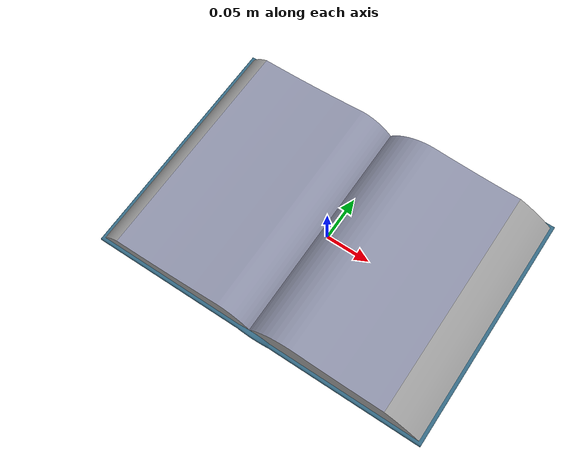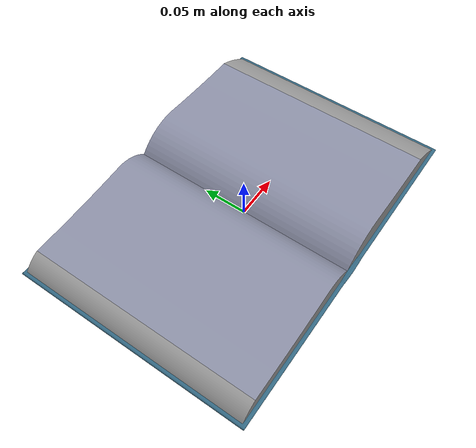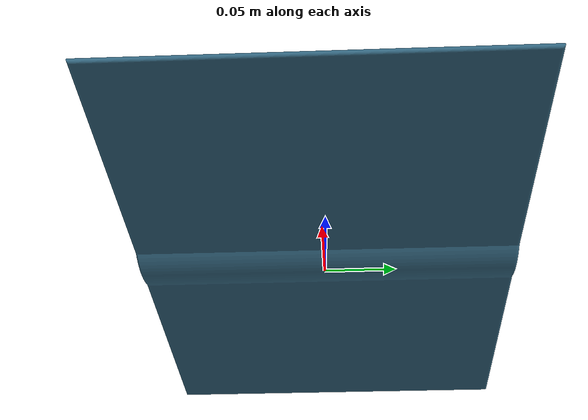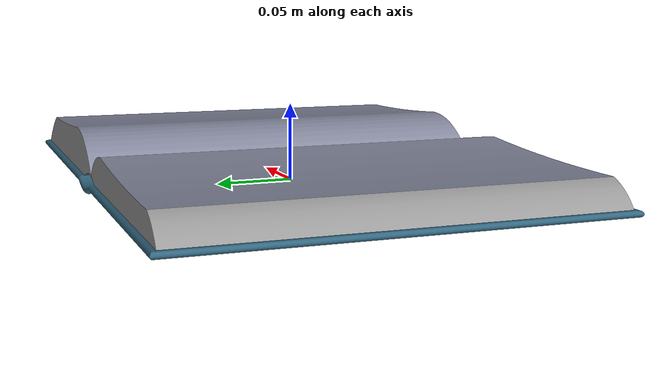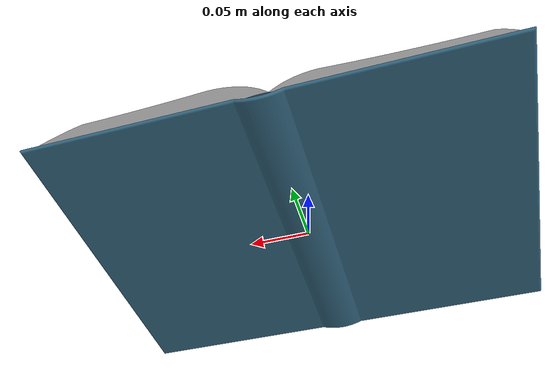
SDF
<?xml version='1.0'?>
<sdf version='1.6'>
  <model name='book_open'>
    <link name='link_2'>
        <visual name='visual'>
        <pose frame=''>0 0 0 0 -0 0</pose>
        <geometry>
          <mesh>
            <uri>model://book_open/meshes/cover.dae</uri>
            <scale>1 1 1</scale>
          </mesh>
        </geometry>
        <material>
          <lighting>1</lighting>
          <script>
            <uri>file://media/materials/scripts/gazebo.material</uri>
            <name>Gazebo/Grey</name>
          </script>
          <ambient>0.1 0.3 0.5 1</ambient>
          <diffuse>0.2 0.4 0.5 1</diffuse>
          <specular>0.01 0.01 0.01 1</specular>
          <emissive>0 0 0 1</emissive>
        </material>
        <cast_shadows>1</cast_shadows>
        <transparency>0</transparency>
      </visual>
      <collision name='collision'>
        <laser_retro>0</laser_retro>
        <max_contacts>10</max_contacts>
        <pose frame=''>0 0 0 0 -0 0</pose>
        <geometry>
          <mesh>
            <uri>model://book_open/meshes/cover.dae</uri>
            <scale>1 1 1</scale>
          </mesh>
        </geometry>

      </collision>
    </link>
    <link name='link_3'>

      <visual name='visual'>
        <pose frame=''>0 0 0 0 -0 0</pose>
        <geometry>
          <mesh>
            <uri>model://book_open/meshes/open_page.dae</uri>
            <scale>1 1 1</scale>
          </mesh>
        </geometry>
       	<material>
          <script>
            <uri>model://book_open/materials/scripts</uri>
            <uri>model://book_open/materials/textures</uri>
            <name>book_page</name>
          </script>
        </material>
        <cast_shadows>1</cast_shadows>
        <transparency>0</transparency>
      </visual>
      <collision name='collision'>
        <laser_retro>0</laser_retro>
        <max_contacts>10</max_contacts>
        <pose frame=''>0 0 0 0 -0 0</pose>
        <geometry>
          <mesh>
            <uri>model://book_open/meshes/open_page.dae</uri>
            <scale>1 1 1</scale>
          </mesh>
        </geometry>

      </collision>
    </link>
    <link name='link_4'>

      <visual name='visual'>
        <pose frame=''>0 0 0 0 -0 0</pose>
        <geometry>
          <mesh>
            <uri>model://book_open/meshes/pages.dae</uri>
            <scale>1 1 1</scale>
          </mesh>
        </geometry>
        <material>
          <lighting>1</lighting>
          <script>
            <uri>file://media/materials/scripts/gazebo.material</uri>
            <name>Gazebo/Grey</name>
          </script>
          <ambient>1 1 1 1</ambient>
          <diffuse>1 1 1 1</diffuse>
          <specular>0.01 0.01 0.01 1</specular>
          <emissive>0 0 0 1</emissive>
        </material>
        <cast_shadows>1</cast_shadows>
        <transparency>0</transparency>
      </visual>
      <collision name='collision'>
        <laser_retro>0</laser_retro>
        <max_contacts>10</max_contacts>
        <pose frame=''>0 0 0 0 -0 0</pose>
        <geometry>
          <mesh>
            <uri>model://book_open/meshes/pages.dae</uri>
            <scale>1 1 1</scale>
          </mesh>
        </geometry>

      </collision>
    </link>
    <static>1</static>
    <allow_auto_disable>1</allow_auto_disable>
  </model>
</sdf>
